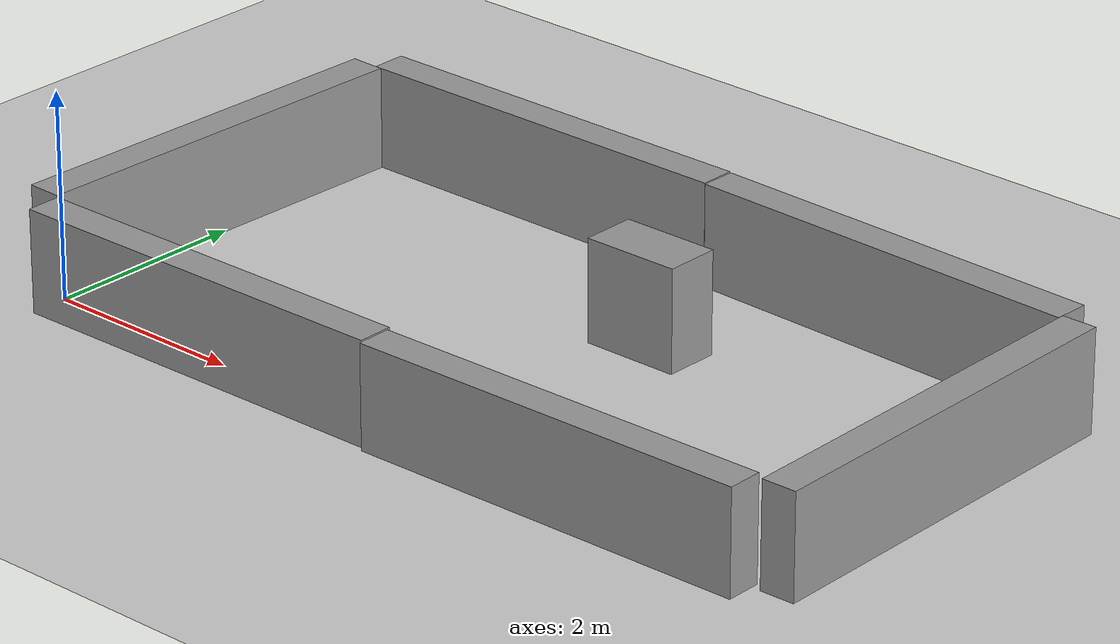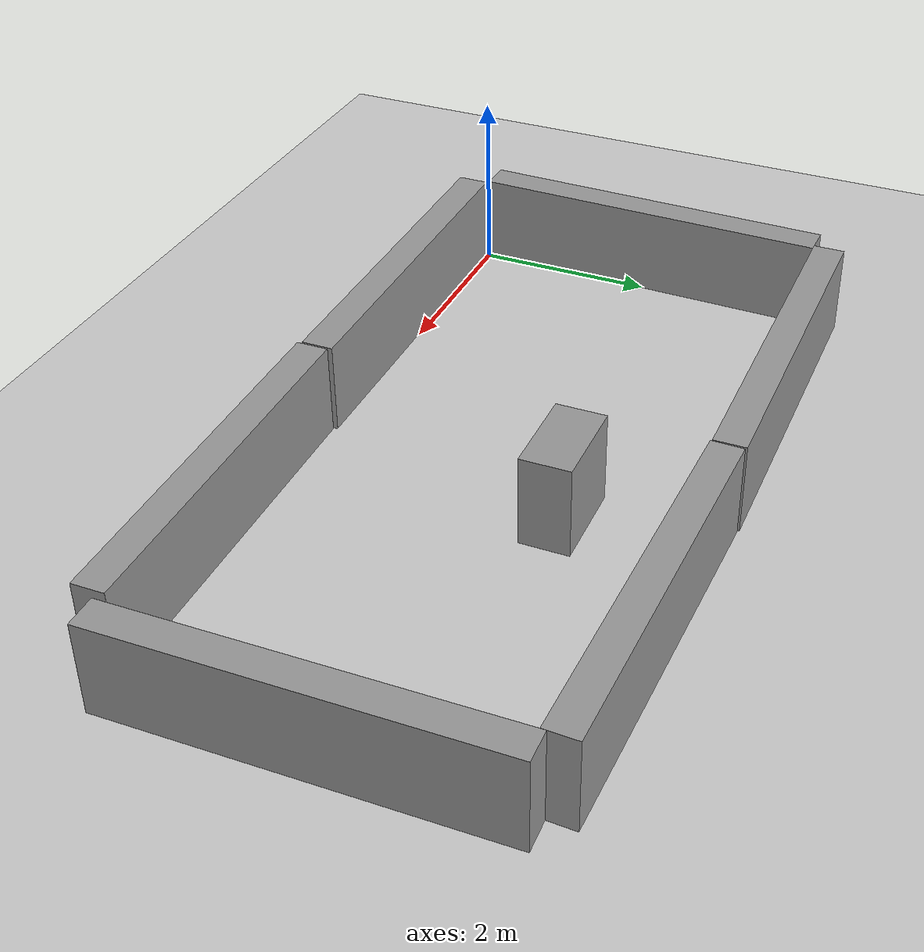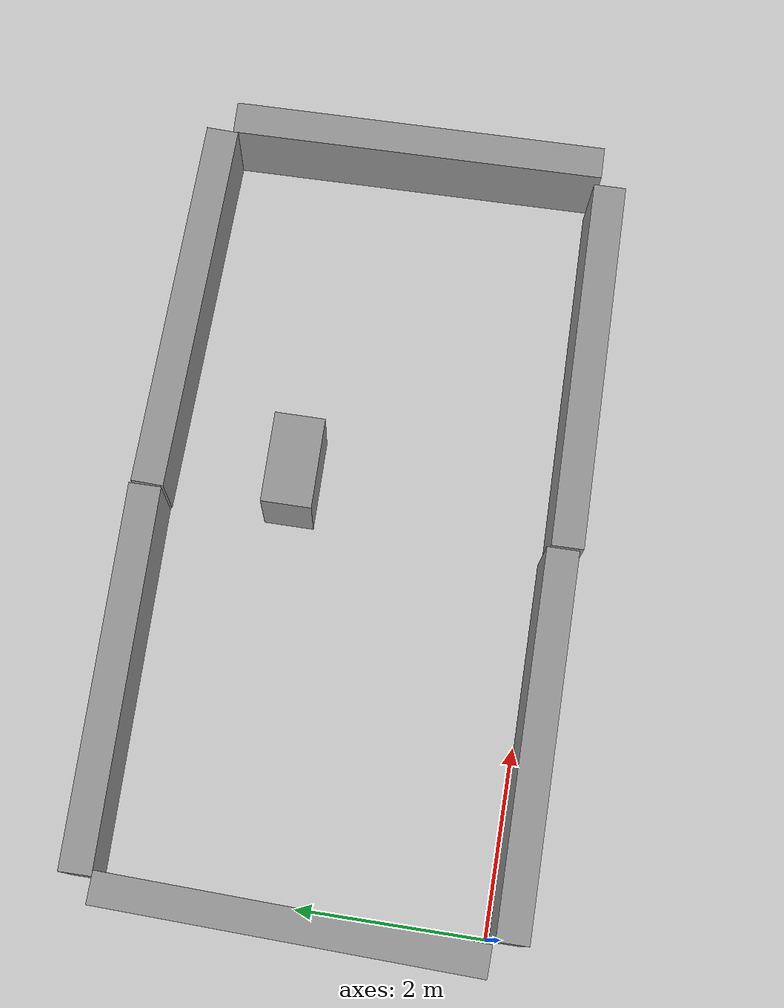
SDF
<sdf version="1.7">
 <world name="default">
  <light name="sun" type="directional">
   <pose>0 0 10 0 -0 0</pose>
   <diffuse>0.8 0.8 0.8 1</diffuse>
   <specular>0.2 0.2 0.2 1</specular>
   <attenuation>
    <range>1000</range>
    <constant>0.9</constant>
    <linear>0.01</linear>
    <quadratic>0.001</quadratic>
   </attenuation>
   <direction>-0.5 0.1 -0.9</direction>
   <spot><inner_angle>0</inner_angle><outer_angle>0</outer_angle><falloff>0</falloff></spot>
  </light>
  <model name="ground_plane">
   <static>1</static>
   <link name="link">
    <collision name="collision">
     <geometry><plane><normal>0 0 1</normal><size>100 100</size></plane></geometry>
     <surface><friction><ode><mu>100</mu><mu2>50</mu2></ode></friction></surface>
    </collision>
    <visual name="visual">
     <cast_shadows>0</cast_shadows>
     <geometry><plane><normal>0 0 1</normal><size>100 100</size></plane></geometry>
     <material>
      <script><uri>file://media/materials/scripts/gazebo.material</uri><name>Gazebo/Grey</name></script>
     </material>
    </visual>
   </link>
  </model>
  <gravity>0 0 -9.8</gravity>
  <magnetic_field>6e-06 2.3e-05 -4.2e-05</magnetic_field>
  <atmosphere type="adiabatic"/>
  <physics type="ode">
   <max_step_size>0.001</max_step_size>
   <real_time_factor>1</real_time_factor>
   <real_time_update_rate>1000</real_time_update_rate>
  </physics>
  <scene><ambient>0.4 0.4 0.4 1</ambient><background>0.7 0.7 0.7 1</background><shadows>1</shadows></scene>
  <spherical_coordinates>
   <surface_model>EARTH_WGS84</surface_model>
   <latitude_deg>0</latitude_deg>
   <longitude_deg>0</longitude_deg>
   <elevation>0</elevation>
   <heading_deg>0</heading_deg>
  </spherical_coordinates>
  <model name="unit_box">
   <pose>4.49608 2.72833 0.5 0 -0 0.006603</pose>
   <link name="link">
    <inertial>
     <mass>1</mass>
     <inertia>
      <ixx>0.166667</ixx>
      <ixy>0</ixy>
      <ixz>0</ixz>
      <iyy>0.166667</iyy>
      <iyz>0</iyz>
      <izz>0.166667</izz>
     </inertia>
    </inertial>
    <collision name="collision"><geometry><box><size>0.964311 0.533471 1</size></box></geometry></collision>
    <visual name="visual">
     <geometry><box><size>0.964311 0.533471 1</size></box></geometry>
     <material>
      <script><name>Gazebo/Grey</name><uri>file://media/materials/scripts/gazebo.material</uri></script>
     </material>
    </visual>
   </link>
  </model>
  <model name="unit_box_clone">
   <pose>6.0146 4.13263 0.499257 -9e-06 0.000373 -0.024974</pose>
   <link name="link">
    <inertial>
     <mass>1</mass>
     <inertia>
      <ixx>0.166667</ixx>
      <ixy>0</ixy>
      <ixz>0</ixz>
      <iyy>0.166667</iyy>
      <iyz>0</iyz>
      <izz>0.166667</izz>
     </inertia>
    </inertial>
    <collision name="collision"><geometry><box><size>4.00266 0.341391 1</size></box></geometry></collision>
    <visual name="visual">
     <geometry><box><size>4.00266 0.341391 1</size></box></geometry>
     <material>
      <script><name>Gazebo/Grey</name><uri>file://media/materials/scripts/gazebo.material</uri></script>
     </material>
    </visual>
   </link>
  </model>
  <model name="unit_box_clone_0">
   <pose>-0.161093 1.99882 0.499257 -9e-06 0.000373 -1.59445</pose>
   <link name="link">
    <inertial>
     <mass>1</mass>
     <inertia>
      <ixx>0.166667</ixx>
      <ixy>0</ixy>
      <ixz>0</ixz>
      <iyy>0.166667</iyy>
      <iyz>0</iyz>
      <izz>0.166667</izz>
     </inertia>
    </inertial>
    <collision name="collision"><geometry><box><size>4.00266 0.341391 1</size></box></geometry></collision>
    <visual name="visual">
     <geometry><box><size>4.00266 0.341391 1</size></box></geometry>
     <material>
      <script><name>Gazebo/Grey</name><uri>file://media/materials/scripts/gazebo.material</uri></script>
     </material>
    </visual>
   </link>
  </model>
  <model name="unit_box_clone_1">
   <pose>1.99641 -0.183764 0.499257 -9e-06 -0.000373 0.007693</pose>
   <link name="link">
    <inertial>
     <mass>1</mass>
     <inertia>
      <ixx>0.166667</ixx>
      <ixy>0</ixy>
      <ixz>0</ixz>
      <iyy>0.166667</iyy>
      <iyz>0</iyz>
      <izz>0.166667</izz>
     </inertia>
    </inertial>
    <collision name="collision"><geometry><box><size>4.00266 0.341391 1</size></box></geometry></collision>
    <visual name="visual">
     <geometry><box><size>4.00266 0.341391 1</size></box></geometry>
     <material>
      <script><name>Gazebo/Grey</name><uri>file://media/materials/scripts/gazebo.material</uri></script>
     </material>
    </visual>
   </link>
  </model>
  <model name="unit_box_clone_0_clone">
   <pose>8.2293 1.97021 0.499257 -9e-06 -0.000373 -1.54801</pose>
   <link name="link">
    <inertial>
     <mass>1</mass>
     <inertia>
      <ixx>0.166667</ixx>
      <ixy>0</ixy>
      <ixz>0</ixz>
      <iyy>0.166667</iyy>
      <iyz>0</iyz>
      <izz>0.166667</izz>
     </inertia>
    </inertial>
    <collision name="collision"><geometry><box><size>4.00266 0.341391 1</size></box></geometry></collision>
    <visual name="visual">
     <geometry><box><size>4.00266 0.341391 1</size></box></geometry>
     <material>
      <script><name>Gazebo/Grey</name><uri>file://media/materials/scripts/gazebo.material</uri></script>
     </material>
    </visual>
   </link>
  </model>
  <model name="unit_box_clone_clone">
   <pose>6.01919 -0.174418 0.499257 -9e-06 -0.000373 0.017692</pose>
   <link name="link">
    <inertial>
     <mass>1</mass>
     <inertia>
      <ixx>0.166667</ixx>
      <ixy>0</ixy>
      <ixz>0</ixz>
      <iyy>0.166667</iyy>
      <iyz>0</iyz>
      <izz>0.166667</izz>
     </inertia>
    </inertial>
    <collision name="collision"><geometry><box><size>4.00266 0.341391 1</size></box></geometry></collision>
    <visual name="visual">
     <geometry><box><size>4.00266 0.341391 1</size></box></geometry>
     <material>
      <script><name>Gazebo/Grey</name><uri>file://media/materials/scripts/gazebo.material</uri></script>
     </material>
    </visual>
   </link>
  </model>
  <model name="unit_box_clone_clone_0">
   <pose>1.99223 4.18277 0.499256 9e-06 0.000373 0.007549</pose>
   <link name="link">
    <inertial>
     <mass>1</mass>
     <inertia>
      <ixx>0.166667</ixx>
      <ixy>0</ixy>
      <ixz>0</ixz>
      <iyy>0.166667</iyy>
      <iyz>0</iyz>
      <izz>0.166667</izz>
     </inertia>
    </inertial>
    <collision name="collision"><geometry><box><size>4.00266 0.341391 1</size></box></geometry></collision>
    <visual name="visual">
     <geometry><box><size>4.00266 0.341391 1</size></box></geometry>
     <material>
      <script><name>Gazebo/Grey</name><uri>file://media/materials/scripts/gazebo.material</uri></script>
     </material>
    </visual>
   </link>
  </model>
 </world>
</sdf>
